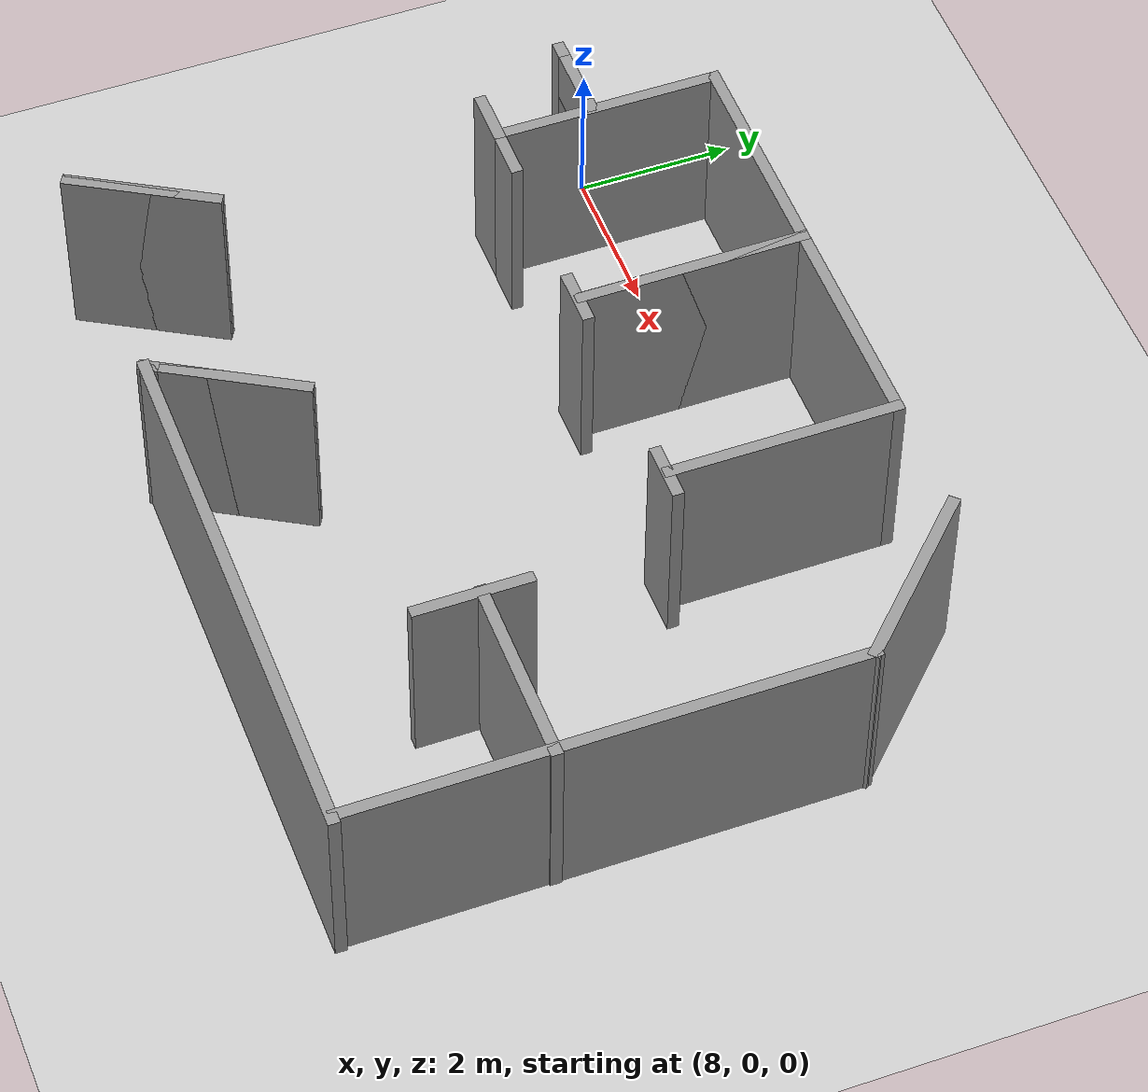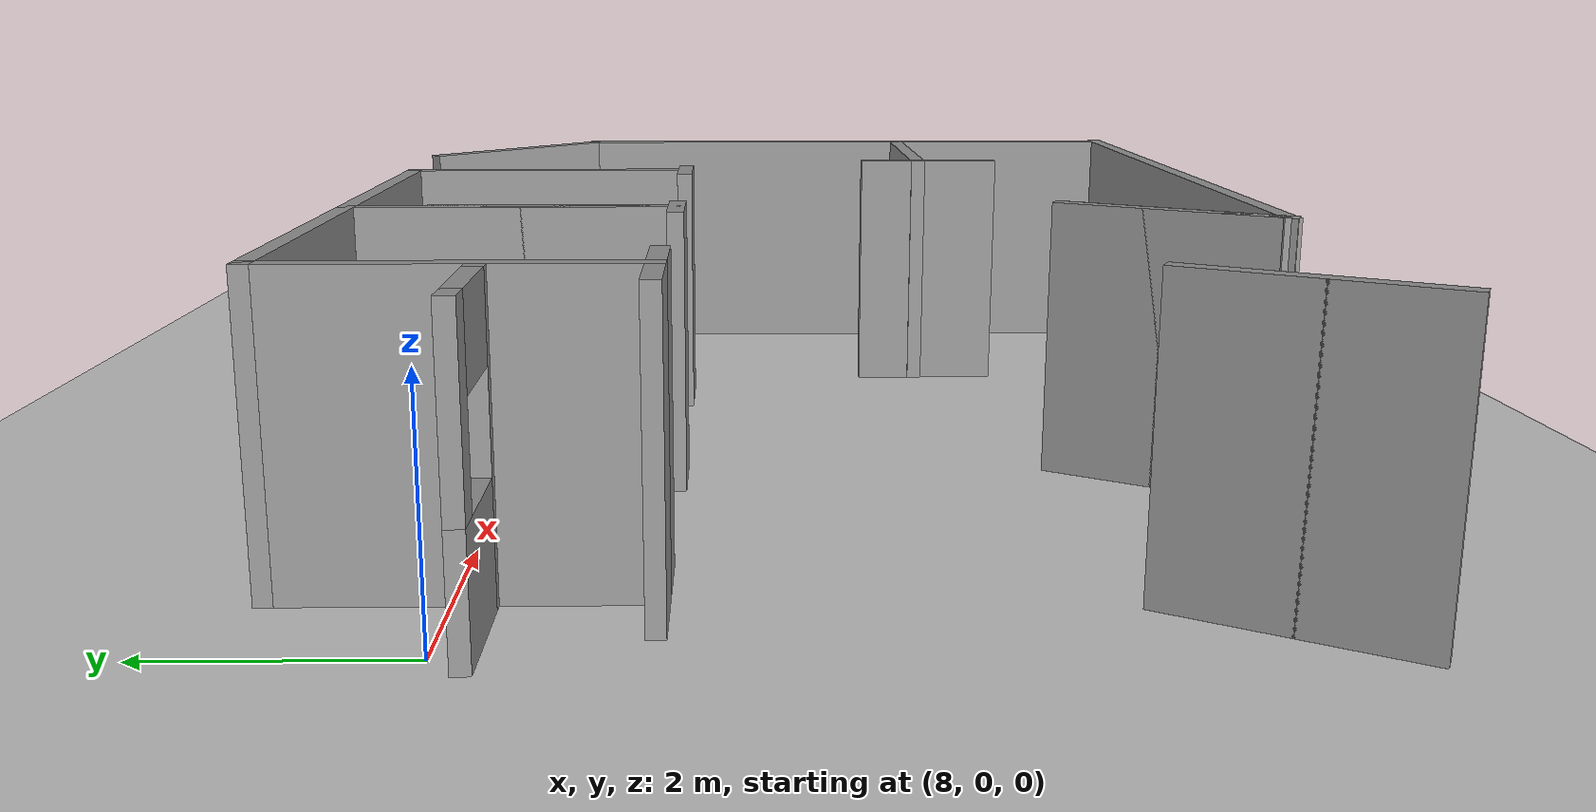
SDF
<sdf version="1.7">
 <world name="default">
  <model name="ground_plane">
   <static>1</static>
   <link name="link">
    <collision name="collision">
     <geometry><plane><normal>0 0 1</normal><size>100 100</size></plane></geometry>
     <surface>
      <contact><collide_bitmask>65535</collide_bitmask></contact>
      <friction><ode><mu>100</mu><mu2>50</mu2></ode></friction>
     </surface>
    </collision>
    <visual name="visual">
     <cast_shadows>0</cast_shadows>
     <geometry><plane><normal>0 0 1</normal><size>100 100</size></plane></geometry>
     <material>
      <script><uri>file://media/materials/scripts/gazebo.material</uri><name>Gazebo/Grey</name></script>
     </material>
    </visual>
   </link>
  </model>
  <model name="test_office_top">
   <link name="Wall_172">
    <pose>4.31898 -3.21326 0 0 -0 1.0472</pose>
    <visual name="Wall_172_Visual">
     <pose>0 0 1.25 0 -0 0</pose>
     <geometry><box><size>2 0.15 2.5</size></box></geometry>
     <material>
      <script><uri>file://media/materials/scripts/gazebo.material</uri><name>Gazebo/Grey</name></script>
      <ambient>1 1 1 1</ambient>
      <shader type="pixel"/>
     </material>
     <meta><layer>0</layer></meta>
    </visual>
    <collision name="Wall_172_Collision">
     <pose>0 0 1.25 0 -0 0</pose>
     <geometry><box><size>2 0.15 2.5</size></box></geometry>
     <surface>
      <friction>
       <ode><mu>1</mu><mu2>1</mu2><fdir1>0 0 0</fdir1><slip1>0</slip1><slip2>0</slip2></ode>
       <torsional>
        <coefficient>1</coefficient>
        <patch_radius>0</patch_radius>
        <surface_radius>0</surface_radius>
        <use_patch_radius>1</use_patch_radius>
        <ode><slip>0</slip></ode>
       </torsional>
      </friction>
      <bounce><restitution_coefficient>0</restitution_coefficient><threshold>1e+06</threshold></bounce>
      <contact>
       <collide_without_contact>0</collide_without_contact>
       <collide_without_contact_bitmask>1</collide_without_contact_bitmask>
       <collide_bitmask>1</collide_bitmask>
       <ode>
        <soft_cfm>0</soft_cfm>
        <soft_erp>0.2</soft_erp>
        <kp>1e+13</kp>
        <kd>1</kd>
        <max_vel>0.01</max_vel>
        <min_depth>0</min_depth>
       </ode>
       <bullet>
        <split_impulse>1</split_impulse>
        <split_impulse_penetration_threshold>-0.01</split_impulse_penetration_threshold>
        <soft_cfm>0</soft_cfm>
        <soft_erp>0.2</soft_erp>
        <kp>1e+13</kp>
        <kd>1</kd>
       </bullet>
      </contact>
     </surface>
    </collision>
   </link>
   <link name="Wall_173">
    <pose>4.31898 -3.21326 0 0 0 -2.0944</pose>
    <visual name="Wall_173_Visual">
     <pose>0 0 1.25 0 -0 0</pose>
     <geometry><box><size>2 0.15 2.5</size></box></geometry>
     <material>
      <script><uri>file://media/materials/scripts/gazebo.material</uri><name>Gazebo/Grey</name></script>
      <ambient>1 1 1 1</ambient>
      <shader type="pixel"/>
     </material>
     <meta><layer>0</layer></meta>
    </visual>
    <collision name="Wall_173_Collision">
     <pose>0 0 1.25 0 -0 0</pose>
     <geometry><box><size>2 0.15 2.5</size></box></geometry>
     <surface>
      <friction>
       <ode><mu>1</mu><mu2>1</mu2><fdir1>0 0 0</fdir1><slip1>0</slip1><slip2>0</slip2></ode>
       <torsional>
        <coefficient>1</coefficient>
        <patch_radius>0</patch_radius>
        <surface_radius>0</surface_radius>
        <use_patch_radius>1</use_patch_radius>
        <ode><slip>0</slip></ode>
       </torsional>
      </friction>
      <bounce><restitution_coefficient>0</restitution_coefficient><threshold>1e+06</threshold></bounce>
      <contact>
       <collide_without_contact>0</collide_without_contact>
       <collide_without_contact_bitmask>1</collide_without_contact_bitmask>
       <collide_bitmask>1</collide_bitmask>
       <ode>
        <soft_cfm>0</soft_cfm>
        <soft_erp>0.2</soft_erp>
        <kp>1e+13</kp>
        <kd>1</kd>
        <max_vel>0.01</max_vel>
        <min_depth>0</min_depth>
       </ode>
       <bullet>
        <split_impulse>1</split_impulse>
        <split_impulse_penetration_threshold>-0.01</split_impulse_penetration_threshold>
        <soft_cfm>0</soft_cfm>
        <soft_erp>0.2</soft_erp>
        <kp>1e+13</kp>
        <kd>1</kd>
       </bullet>
      </contact>
     </surface>
    </collision>
   </link>
   <link name="Wall_196">
    <pose>7.53536 -3.13578 0 0 -0 1.0472</pose>
    <visual name="Wall_196_Visual">
     <pose>0 0 1.25 0 -0 0</pose>
     <geometry><box><size>2 0.15 2.5</size></box></geometry>
     <material>
      <script><uri>file://media/materials/scripts/gazebo.material</uri><name>Gazebo/Grey</name></script>
      <ambient>1 1 1 1</ambient>
      <shader type="pixel"/>
     </material>
     <meta><layer>0</layer></meta>
    </visual>
    <collision name="Wall_196_Collision">
     <pose>0 0 1.25 0 -0 0</pose>
     <geometry><box><size>2 0.15 2.5</size></box></geometry>
     <surface>
      <friction>
       <ode><mu>1</mu><mu2>1</mu2><fdir1>0 0 0</fdir1><slip1>0</slip1><slip2>0</slip2></ode>
       <torsional>
        <coefficient>1</coefficient>
        <patch_radius>0</patch_radius>
        <surface_radius>0</surface_radius>
        <use_patch_radius>1</use_patch_radius>
        <ode><slip>0</slip></ode>
       </torsional>
      </friction>
      <bounce><restitution_coefficient>0</restitution_coefficient><threshold>1e+06</threshold></bounce>
      <contact>
       <collide_without_contact>0</collide_without_contact>
       <collide_without_contact_bitmask>1</collide_without_contact_bitmask>
       <collide_bitmask>1</collide_bitmask>
       <ode>
        <soft_cfm>0</soft_cfm>
        <soft_erp>0.2</soft_erp>
        <kp>1e+13</kp>
        <kd>1</kd>
        <max_vel>0.01</max_vel>
        <min_depth>0</min_depth>
       </ode>
       <bullet>
        <split_impulse>1</split_impulse>
        <split_impulse_penetration_threshold>-0.01</split_impulse_penetration_threshold>
        <soft_cfm>0</soft_cfm>
        <soft_erp>0.2</soft_erp>
        <kp>1e+13</kp>
        <kd>1</kd>
       </bullet>
      </contact>
     </surface>
    </collision>
   </link>
   <link name="Wall_197">
    <pose>7.53536 -3.13578 0 0 0 -2.0944</pose>
    <visual name="Wall_197_Visual">
     <pose>0 0 1.25 0 -0 0</pose>
     <geometry><box><size>2 0.15 2.5</size></box></geometry>
     <material>
      <script><uri>file://media/materials/scripts/gazebo.material</uri><name>Gazebo/Grey</name></script>
      <ambient>1 1 1 1</ambient>
      <shader type="pixel"/>
     </material>
     <meta><layer>0</layer></meta>
    </visual>
    <collision name="Wall_197_Collision">
     <pose>0 0 1.25 0 -0 0</pose>
     <geometry><box><size>2 0.15 2.5</size></box></geometry>
     <surface>
      <friction>
       <ode><mu>1</mu><mu2>1</mu2><fdir1>0 0 0</fdir1><slip1>0</slip1><slip2>0</slip2></ode>
       <torsional>
        <coefficient>1</coefficient>
        <patch_radius>0</patch_radius>
        <surface_radius>0</surface_radius>
        <use_patch_radius>1</use_patch_radius>
        <ode><slip>0</slip></ode>
       </torsional>
      </friction>
      <bounce><restitution_coefficient>0</restitution_coefficient><threshold>1e+06</threshold></bounce>
      <contact>
       <collide_without_contact>0</collide_without_contact>
       <collide_without_contact_bitmask>1</collide_without_contact_bitmask>
       <collide_bitmask>1</collide_bitmask>
       <ode>
        <soft_cfm>0</soft_cfm>
        <soft_erp>0.2</soft_erp>
        <kp>1e+13</kp>
        <kd>1</kd>
        <max_vel>0.01</max_vel>
        <min_depth>0</min_depth>
       </ode>
       <bullet>
        <split_impulse>1</split_impulse>
        <split_impulse_penetration_threshold>-0.01</split_impulse_penetration_threshold>
        <soft_cfm>0</soft_cfm>
        <soft_erp>0.2</soft_erp>
        <kp>1e+13</kp>
        <kd>1</kd>
       </bullet>
      </contact>
     </surface>
    </collision>
   </link>
   <link name="Wall_198">
    <pose>7.04786 -3.98016 0 0 0 -2.0944</pose>
    <visual name="Wall_198_Visual">
     <pose>0 0 1.25 0 -0 0</pose>
     <geometry><box><size>0.25 0.15 2.5</size></box></geometry>
     <material>
      <script><uri>file://media/materials/scripts/gazebo.material</uri><name>Gazebo/Grey</name></script>
      <ambient>1 1 1 1</ambient>
      <shader type="pixel"/>
     </material>
     <meta><layer>0</layer></meta>
    </visual>
    <collision name="Wall_198_Collision">
     <pose>0 0 1.25 0 -0 0</pose>
     <geometry><box><size>0.25 0.15 2.5</size></box></geometry>
     <surface>
      <friction>
       <ode><mu>1</mu><mu2>1</mu2><fdir1>0 0 0</fdir1><slip1>0</slip1><slip2>0</slip2></ode>
       <torsional>
        <coefficient>1</coefficient>
        <patch_radius>0</patch_radius>
        <surface_radius>0</surface_radius>
        <use_patch_radius>1</use_patch_radius>
        <ode><slip>0</slip></ode>
       </torsional>
      </friction>
      <bounce><restitution_coefficient>0</restitution_coefficient><threshold>1e+06</threshold></bounce>
      <contact>
       <collide_without_contact>0</collide_without_contact>
       <collide_without_contact_bitmask>1</collide_without_contact_bitmask>
       <collide_bitmask>1</collide_bitmask>
       <ode>
        <soft_cfm>0</soft_cfm>
        <soft_erp>0.2</soft_erp>
        <kp>1e+13</kp>
        <kd>1</kd>
        <max_vel>0.01</max_vel>
        <min_depth>0</min_depth>
       </ode>
       <bullet>
        <split_impulse>1</split_impulse>
        <split_impulse_penetration_threshold>-0.01</split_impulse_penetration_threshold>
        <soft_cfm>0</soft_cfm>
        <soft_erp>0.2</soft_erp>
        <kp>1e+13</kp>
        <kd>1</kd>
       </bullet>
      </contact>
     </surface>
    </collision>
   </link>
   <link name="Wall_199">
    <pose>10.4632 -4.03111 0 0 0 -0.002223</pose>
    <visual name="Wall_199_Visual">
     <pose>0 0 1.25 0 -0 0</pose>
     <geometry><box><size>7.03061 0.15 2.5</size></box></geometry>
     <material>
      <script><uri>file://media/materials/scripts/gazebo.material</uri><name>Gazebo/Grey</name></script>
      <ambient>1 1 1 1</ambient>
      <shader type="pixel"/>
     </material>
     <meta><layer>0</layer></meta>
    </visual>
    <collision name="Wall_199_Collision">
     <pose>0 0 1.25 0 -0 0</pose>
     <geometry><box><size>7.03061 0.15 2.5</size></box></geometry>
     <surface>
      <friction>
       <ode><mu>1</mu><mu2>1</mu2><fdir1>0 0 0</fdir1><slip1>0</slip1><slip2>0</slip2></ode>
       <torsional>
        <coefficient>1</coefficient>
        <patch_radius>0</patch_radius>
        <surface_radius>0</surface_radius>
        <use_patch_radius>1</use_patch_radius>
        <ode><slip>0</slip></ode>
       </torsional>
      </friction>
      <bounce><restitution_coefficient>0</restitution_coefficient><threshold>1e+06</threshold></bounce>
      <contact>
       <collide_without_contact>0</collide_without_contact>
       <collide_without_contact_bitmask>1</collide_without_contact_bitmask>
       <collide_bitmask>1</collide_bitmask>
       <ode>
        <soft_cfm>0</soft_cfm>
        <soft_erp>0.2</soft_erp>
        <kp>1e+13</kp>
        <kd>1</kd>
        <max_vel>0.01</max_vel>
        <min_depth>0</min_depth>
       </ode>
       <bullet>
        <split_impulse>1</split_impulse>
        <split_impulse_penetration_threshold>-0.01</split_impulse_penetration_threshold>
        <soft_cfm>0</soft_cfm>
        <soft_erp>0.2</soft_erp>
        <kp>1e+13</kp>
        <kd>1</kd>
       </bullet>
      </contact>
     </surface>
    </collision>
   </link>
   <link name="Wall_331">
    <pose>6.37934 4.00166 0 0 -0 0</pose>
    <visual name="Wall_331_Visual">
     <pose>0 0 1.25 0 -0 0</pose>
     <geometry><box><size>3 0.15 2.5</size></box></geometry>
     <material>
      <script><uri>file://media/materials/scripts/gazebo.material</uri><name>Gazebo/Grey</name></script>
      <ambient>1 1 1 1</ambient>
      <shader type="pixel"/>
     </material>
     <meta><layer>0</layer></meta>
    </visual>
    <collision name="Wall_331_Collision">
     <pose>0 0 1.25 0 -0 0</pose>
     <geometry><box><size>3 0.15 2.5</size></box></geometry>
     <surface>
      <friction>
       <ode><mu>1</mu><mu2>1</mu2><fdir1>0 0 0</fdir1><slip1>0</slip1><slip2>0</slip2></ode>
       <torsional>
        <coefficient>1</coefficient>
        <patch_radius>0</patch_radius>
        <surface_radius>0</surface_radius>
        <use_patch_radius>1</use_patch_radius>
        <ode><slip>0</slip></ode>
       </torsional>
      </friction>
      <bounce><restitution_coefficient>0</restitution_coefficient><threshold>1e+06</threshold></bounce>
      <contact>
       <collide_without_contact>0</collide_without_contact>
       <collide_without_contact_bitmask>1</collide_without_contact_bitmask>
       <collide_bitmask>1</collide_bitmask>
       <ode>
        <soft_cfm>0</soft_cfm>
        <soft_erp>0.2</soft_erp>
        <kp>1e+13</kp>
        <kd>1</kd>
        <max_vel>0.01</max_vel>
        <min_depth>0</min_depth>
       </ode>
       <bullet>
        <split_impulse>1</split_impulse>
        <split_impulse_penetration_threshold>-0.01</split_impulse_penetration_threshold>
        <soft_cfm>0</soft_cfm>
        <soft_erp>0.2</soft_erp>
        <kp>1e+13</kp>
        <kd>1</kd>
       </bullet>
      </contact>
     </surface>
    </collision>
   </link>
   <link name="Wall_332">
    <pose>7.80434 2.57666 0 0 0 -1.5708</pose>
    <visual name="Wall_332_Visual">
     <pose>0 0 1.25 0 -0 0</pose>
     <geometry><box><size>3 0.15 2.5</size></box></geometry>
     <material>
      <script><uri>file://media/materials/scripts/gazebo.material</uri><name>Gazebo/Grey</name></script>
      <ambient>1 1 1 1</ambient>
      <shader type="pixel"/>
     </material>
     <meta><layer>0</layer></meta>
    </visual>
    <collision name="Wall_332_Collision">
     <pose>0 0 1.25 0 -0 0</pose>
     <geometry><box><size>3 0.15 2.5</size></box></geometry>
     <surface>
      <friction>
       <ode><mu>1</mu><mu2>1</mu2><fdir1>0 0 0</fdir1><slip1>0</slip1><slip2>0</slip2></ode>
       <torsional>
        <coefficient>1</coefficient>
        <patch_radius>0</patch_radius>
        <surface_radius>0</surface_radius>
        <use_patch_radius>1</use_patch_radius>
        <ode><slip>0</slip></ode>
       </torsional>
      </friction>
      <bounce><restitution_coefficient>0</restitution_coefficient><threshold>1e+06</threshold></bounce>
      <contact>
       <collide_without_contact>0</collide_without_contact>
       <collide_without_contact_bitmask>1</collide_without_contact_bitmask>
       <collide_bitmask>1</collide_bitmask>
       <ode>
        <soft_cfm>0</soft_cfm>
        <soft_erp>0.2</soft_erp>
        <kp>1e+13</kp>
        <kd>1</kd>
        <max_vel>0.01</max_vel>
        <min_depth>0</min_depth>
       </ode>
       <bullet>
        <split_impulse>1</split_impulse>
        <split_impulse_penetration_threshold>-0.01</split_impulse_penetration_threshold>
        <soft_cfm>0</soft_cfm>
        <soft_erp>0.2</soft_erp>
        <kp>1e+13</kp>
        <kd>1</kd>
       </bullet>
      </contact>
     </surface>
    </collision>
   </link>
   <link name="Wall_333">
    <pose>7.80434 2.57666 0 0 -0 1.5708</pose>
    <visual name="Wall_333_Visual">
     <pose>0 0 1.25 0 -0 0</pose>
     <geometry><box><size>3 0.15 2.5</size></box></geometry>
     <material>
      <script><uri>file://media/materials/scripts/gazebo.material</uri><name>Gazebo/Grey</name></script>
      <ambient>1 1 1 1</ambient>
      <shader type="pixel"/>
     </material>
     <meta><layer>0</layer></meta>
    </visual>
    <collision name="Wall_333_Collision">
     <pose>0 0 1.25 0 -0 0</pose>
     <geometry><box><size>3 0.15 2.5</size></box></geometry>
     <surface>
      <friction>
       <ode><mu>1</mu><mu2>1</mu2><fdir1>0 0 0</fdir1><slip1>0</slip1><slip2>0</slip2></ode>
       <torsional>
        <coefficient>1</coefficient>
        <patch_radius>0</patch_radius>
        <surface_radius>0</surface_radius>
        <use_patch_radius>1</use_patch_radius>
        <ode><slip>0</slip></ode>
       </torsional>
      </friction>
      <bounce><restitution_coefficient>0</restitution_coefficient><threshold>1e+06</threshold></bounce>
      <contact>
       <collide_without_contact>0</collide_without_contact>
       <collide_without_contact_bitmask>1</collide_without_contact_bitmask>
       <collide_bitmask>1</collide_bitmask>
       <ode>
        <soft_cfm>0</soft_cfm>
        <soft_erp>0.2</soft_erp>
        <kp>1e+13</kp>
        <kd>1</kd>
        <max_vel>0.01</max_vel>
        <min_depth>0</min_depth>
       </ode>
       <bullet>
        <split_impulse>1</split_impulse>
        <split_impulse_penetration_threshold>-0.01</split_impulse_penetration_threshold>
        <soft_cfm>0</soft_cfm>
        <soft_erp>0.2</soft_erp>
        <kp>1e+13</kp>
        <kd>1</kd>
       </bullet>
      </contact>
     </surface>
    </collision>
   </link>
   <link name="Wall_334">
    <pose>9.22934 4.00166 0 0 -0 0</pose>
    <visual name="Wall_334_Visual">
     <pose>0 0 1.25 0 -0 0</pose>
     <geometry><box><size>3 0.15 2.5</size></box></geometry>
     <material>
      <script><uri>file://media/materials/scripts/gazebo.material</uri><name>Gazebo/Grey</name></script>
      <ambient>1 1 1 1</ambient>
      <shader type="pixel"/>
     </material>
     <meta><layer>0</layer></meta>
    </visual>
    <collision name="Wall_334_Collision">
     <pose>0 0 1.25 0 -0 0</pose>
     <geometry><box><size>3 0.15 2.5</size></box></geometry>
     <surface>
      <friction>
       <ode><mu>1</mu><mu2>1</mu2><fdir1>0 0 0</fdir1><slip1>0</slip1><slip2>0</slip2></ode>
       <torsional>
        <coefficient>1</coefficient>
        <patch_radius>0</patch_radius>
        <surface_radius>0</surface_radius>
        <use_patch_radius>1</use_patch_radius>
        <ode><slip>0</slip></ode>
       </torsional>
      </friction>
      <bounce><restitution_coefficient>0</restitution_coefficient><threshold>1e+06</threshold></bounce>
      <contact>
       <collide_without_contact>0</collide_without_contact>
       <collide_without_contact_bitmask>1</collide_without_contact_bitmask>
       <collide_bitmask>1</collide_bitmask>
       <ode>
        <soft_cfm>0</soft_cfm>
        <soft_erp>0.2</soft_erp>
        <kp>1e+13</kp>
        <kd>1</kd>
        <max_vel>0.01</max_vel>
        <min_depth>0</min_depth>
       </ode>
       <bullet>
        <split_impulse>1</split_impulse>
        <split_impulse_penetration_threshold>-0.01</split_impulse_penetration_threshold>
        <soft_cfm>0</soft_cfm>
        <soft_erp>0.2</soft_erp>
        <kp>1e+13</kp>
        <kd>1</kd>
       </bullet>
      </contact>
     </surface>
    </collision>
   </link>
   <link name="Wall_335">
    <pose>10.6543 2.57666 0 0 0 -1.5708</pose>
    <visual name="Wall_335_Visual">
     <pose>0 0 1.25 0 -0 0</pose>
     <geometry><box><size>3 0.15 2.5</size></box></geometry>
     <material>
      <script><uri>file://media/materials/scripts/gazebo.material</uri><name>Gazebo/Grey</name></script>
      <ambient>1 1 1 1</ambient>
      <shader type="pixel"/>
     </material>
     <meta><layer>0</layer></meta>
    </visual>
    <collision name="Wall_335_Collision">
     <pose>0 0 1.25 0 -0 0</pose>
     <geometry><box><size>3 0.15 2.5</size></box></geometry>
     <surface>
      <friction>
       <ode><mu>1</mu><mu2>1</mu2><fdir1>0 0 0</fdir1><slip1>0</slip1><slip2>0</slip2></ode>
       <torsional>
        <coefficient>1</coefficient>
        <patch_radius>0</patch_radius>
        <surface_radius>0</surface_radius>
        <use_patch_radius>1</use_patch_radius>
        <ode><slip>0</slip></ode>
       </torsional>
      </friction>
      <bounce><restitution_coefficient>0</restitution_coefficient><threshold>1e+06</threshold></bounce>
      <contact>
       <collide_without_contact>0</collide_without_contact>
       <collide_without_contact_bitmask>1</collide_without_contact_bitmask>
       <collide_bitmask>1</collide_bitmask>
       <ode>
        <soft_cfm>0</soft_cfm>
        <soft_erp>0.2</soft_erp>
        <kp>1e+13</kp>
        <kd>1</kd>
        <max_vel>0.01</max_vel>
        <min_depth>0</min_depth>
       </ode>
       <bullet>
        <split_impulse>1</split_impulse>
        <split_impulse_penetration_threshold>-0.01</split_impulse_penetration_threshold>
        <soft_cfm>0</soft_cfm>
        <soft_erp>0.2</soft_erp>
        <kp>1e+13</kp>
        <kd>1</kd>
       </bullet>
      </contact>
     </surface>
    </collision>
   </link>
   <link name="Wall_337">
    <pose>7.77966 1.11419 0 0 -0 0</pose>
    <visual name="Wall_337_Visual">
     <pose>0 0 1.25 0 -0 0</pose>
     <geometry><box><size>0.75 0.15 2.5</size></box></geometry>
     <material>
      <script><uri>file://media/materials/scripts/gazebo.material</uri><name>Gazebo/Grey</name></script>
      <ambient>1 1 1 1</ambient>
      <shader type="pixel"/>
     </material>
     <meta><layer>0</layer></meta>
    </visual>
    <collision name="Wall_337_Collision">
     <pose>0 0 1.25 0 -0 0</pose>
     <geometry><box><size>0.75 0.15 2.5</size></box></geometry>
     <surface>
      <friction>
       <ode><mu>1</mu><mu2>1</mu2><fdir1>0 0 0</fdir1><slip1>0</slip1><slip2>0</slip2></ode>
       <torsional>
        <coefficient>1</coefficient>
        <patch_radius>0</patch_radius>
        <surface_radius>0</surface_radius>
        <use_patch_radius>1</use_patch_radius>
        <ode><slip>0</slip></ode>
       </torsional>
      </friction>
      <bounce><restitution_coefficient>0</restitution_coefficient><threshold>1e+06</threshold></bounce>
      <contact>
       <collide_without_contact>0</collide_without_contact>
       <collide_without_contact_bitmask>1</collide_without_contact_bitmask>
       <collide_bitmask>1</collide_bitmask>
       <ode>
        <soft_cfm>0</soft_cfm>
        <soft_erp>0.2</soft_erp>
        <kp>1e+13</kp>
        <kd>1</kd>
        <max_vel>0.01</max_vel>
        <min_depth>0</min_depth>
       </ode>
       <bullet>
        <split_impulse>1</split_impulse>
        <split_impulse_penetration_threshold>-0.01</split_impulse_penetration_threshold>
        <soft_cfm>0</soft_cfm>
        <soft_erp>0.2</soft_erp>
        <kp>1e+13</kp>
        <kd>1</kd>
       </bullet>
      </contact>
     </surface>
    </collision>
   </link>
   <link name="Wall_343">
    <pose>10.6379 1.12605 0 0 -0 0</pose>
    <visual name="Wall_343_Visual">
     <pose>0 0 1.25 0 -0 0</pose>
     <geometry><box><size>0.75 0.15 2.5</size></box></geometry>
     <material>
      <script><uri>file://media/materials/scripts/gazebo.material</uri><name>Gazebo/Grey</name></script>
      <ambient>1 1 1 1</ambient>
      <shader type="pixel"/>
     </material>
     <meta><layer>0</layer></meta>
    </visual>
    <collision name="Wall_343_Collision">
     <pose>0 0 1.25 0 -0 0</pose>
     <geometry><box><size>0.75 0.15 2.5</size></box></geometry>
     <surface>
      <friction>
       <ode><mu>1</mu><mu2>1</mu2><fdir1>0 0 0</fdir1><slip1>0</slip1><slip2>0</slip2></ode>
       <torsional>
        <coefficient>1</coefficient>
        <patch_radius>0</patch_radius>
        <surface_radius>0</surface_radius>
        <use_patch_radius>1</use_patch_radius>
        <ode><slip>0</slip></ode>
       </torsional>
      </friction>
      <bounce><restitution_coefficient>0</restitution_coefficient><threshold>1e+06</threshold></bounce>
      <contact>
       <collide_without_contact>0</collide_without_contact>
       <collide_without_contact_bitmask>1</collide_without_contact_bitmask>
       <collide_bitmask>1</collide_bitmask>
       <ode>
        <soft_cfm>0</soft_cfm>
        <soft_erp>0.2</soft_erp>
        <kp>1e+13</kp>
        <kd>1</kd>
        <max_vel>0.01</max_vel>
        <min_depth>0</min_depth>
       </ode>
       <bullet>
        <split_impulse>1</split_impulse>
        <split_impulse_penetration_threshold>-0.01</split_impulse_penetration_threshold>
        <soft_cfm>0</soft_cfm>
        <soft_erp>0.2</soft_erp>
        <kp>1e+13</kp>
        <kd>1</kd>
       </bullet>
      </contact>
     </surface>
    </collision>
   </link>
   <link name="Wall_358">
    <pose>12.709 -1.45939 0 0 -0 3.14159</pose>
    <visual name="Wall_358_Visual">
     <pose>0 0 1.25 0 -0 0</pose>
     <geometry><box><size>2.5 0.15 2.5</size></box></geometry>
     <material>
      <script><uri>file://media/materials/scripts/gazebo.material</uri><name>Gazebo/Grey</name></script>
      <ambient>1 1 1 1</ambient>
      <shader type="pixel"/>
     </material>
     <meta><layer>0</layer></meta>
    </visual>
    <collision name="Wall_358_Collision">
     <pose>0 0 1.25 0 -0 0</pose>
     <geometry><box><size>2.5 0.15 2.5</size></box></geometry>
     <surface>
      <friction>
       <ode><mu>1</mu><mu2>1</mu2><fdir1>0 0 0</fdir1><slip1>0</slip1><slip2>0</slip2></ode>
       <torsional>
        <coefficient>1</coefficient>
        <patch_radius>0</patch_radius>
        <surface_radius>0</surface_radius>
        <use_patch_radius>1</use_patch_radius>
        <ode><slip>0</slip></ode>
       </torsional>
      </friction>
      <bounce><restitution_coefficient>0</restitution_coefficient><threshold>1e+06</threshold></bounce>
      <contact>
       <collide_without_contact>0</collide_without_contact>
       <collide_without_contact_bitmask>1</collide_without_contact_bitmask>
       <collide_bitmask>1</collide_bitmask>
       <ode>
        <soft_cfm>0</soft_cfm>
        <soft_erp>0.2</soft_erp>
        <kp>1e+13</kp>
        <kd>1</kd>
        <max_vel>0.01</max_vel>
        <min_depth>0</min_depth>
       </ode>
       <bullet>
        <split_impulse>1</split_impulse>
        <split_impulse_penetration_threshold>-0.01</split_impulse_penetration_threshold>
        <soft_cfm>0</soft_cfm>
        <soft_erp>0.2</soft_erp>
        <kp>1e+13</kp>
        <kd>1</kd>
       </bullet>
      </contact>
     </surface>
    </collision>
   </link>
   <link name="Wall_360">
    <pose>11.5476 -1.57698 0 0 0 -1.5708</pose>
    <visual name="Wall_360_Visual">
     <pose>0 0 1.25 0 -0 0</pose>
     <geometry><box><size>1.5 0.15 2.5</size></box></geometry>
     <material>
      <script><uri>file://media/materials/scripts/gazebo.material</uri><name>Gazebo/Grey</name></script>
      <ambient>1 1 1 1</ambient>
      <shader type="pixel"/>
     </material>
     <meta><layer>0</layer></meta>
    </visual>
    <collision name="Wall_360_Collision">
     <pose>0 0 1.25 0 -0 0</pose>
     <geometry><box><size>1.5 0.15 2.5</size></box></geometry>
     <surface>
      <friction>
       <ode><mu>1</mu><mu2>1</mu2><fdir1>0 0 0</fdir1><slip1>0</slip1><slip2>0</slip2></ode>
       <torsional>
        <coefficient>1</coefficient>
        <patch_radius>0</patch_radius>
        <surface_radius>0</surface_radius>
        <use_patch_radius>1</use_patch_radius>
        <ode><slip>0</slip></ode>
       </torsional>
      </friction>
      <bounce><restitution_coefficient>0</restitution_coefficient><threshold>1e+06</threshold></bounce>
      <contact>
       <collide_without_contact>0</collide_without_contact>
       <collide_without_contact_bitmask>1</collide_without_contact_bitmask>
       <collide_bitmask>1</collide_bitmask>
       <ode>
        <soft_cfm>0</soft_cfm>
        <soft_erp>0.2</soft_erp>
        <kp>1e+13</kp>
        <kd>1</kd>
        <max_vel>0.01</max_vel>
        <min_depth>0</min_depth>
       </ode>
       <bullet>
        <split_impulse>1</split_impulse>
        <split_impulse_penetration_threshold>-0.01</split_impulse_penetration_threshold>
        <soft_cfm>0</soft_cfm>
        <soft_erp>0.2</soft_erp>
        <kp>1e+13</kp>
        <kd>1</kd>
       </bullet>
      </contact>
     </surface>
    </collision>
   </link>
   <link name="Wall_362">
    <pose>13.0307 3.18899 0 0 0 -0.785398</pose>
    <visual name="Wall_362_Visual">
     <pose>0 0 1.25 0 -0 0</pose>
     <geometry><box><size>2.5 0.15 2.5</size></box></geometry>
     <material>
      <script><uri>file://media/materials/scripts/gazebo.material</uri><name>Gazebo/Grey</name></script>
      <ambient>1 1 1 1</ambient>
      <shader type="pixel"/>
     </material>
     <meta><layer>0</layer></meta>
    </visual>
    <collision name="Wall_362_Collision">
     <pose>0 0 1.25 0 -0 0</pose>
     <geometry><box><size>2.5 0.15 2.5</size></box></geometry>
     <surface>
      <friction>
       <ode><mu>1</mu><mu2>1</mu2><fdir1>0 0 0</fdir1><slip1>0</slip1><slip2>0</slip2></ode>
       <torsional>
        <coefficient>1</coefficient>
        <patch_radius>0</patch_radius>
        <surface_radius>0</surface_radius>
        <use_patch_radius>1</use_patch_radius>
        <ode><slip>0</slip></ode>
       </torsional>
      </friction>
      <bounce><restitution_coefficient>0</restitution_coefficient><threshold>1e+06</threshold></bounce>
      <contact>
       <collide_without_contact>0</collide_without_contact>
       <collide_without_contact_bitmask>1</collide_without_contact_bitmask>
       <collide_bitmask>1</collide_bitmask>
       <ode>
        <soft_cfm>0</soft_cfm>
        <soft_erp>0.2</soft_erp>
        <kp>1e+13</kp>
        <kd>1</kd>
        <max_vel>0.01</max_vel>
        <min_depth>0</min_depth>
       </ode>
       <bullet>
        <split_impulse>1</split_impulse>
        <split_impulse_penetration_threshold>-0.01</split_impulse_penetration_threshold>
        <soft_cfm>0</soft_cfm>
        <soft_erp>0.2</soft_erp>
        <kp>1e+13</kp>
        <kd>1</kd>
       </bullet>
      </contact>
     </surface>
    </collision>
   </link>
   <link name="Wall_366">
    <pose>13.8616 -0.816857 0 0 0 -1.5708</pose>
    <visual name="Wall_366_Visual">
     <pose>0 0 1.25 0 -0 0</pose>
     <geometry><box><size>6.5 0.15 2.5</size></box></geometry>
     <material>
      <script><uri>file://media/materials/scripts/gazebo.material</uri><name>Gazebo/Grey</name></script>
      <ambient>1 1 1 1</ambient>
      <shader type="pixel"/>
     </material>
     <meta><layer>0</layer></meta>
    </visual>
    <collision name="Wall_366_Collision">
     <pose>0 0 1.25 0 -0 0</pose>
     <geometry><box><size>6.5 0.15 2.5</size></box></geometry>
     <surface>
      <friction>
       <ode><mu>1</mu><mu2>1</mu2><fdir1>0 0 0</fdir1><slip1>0</slip1><slip2>0</slip2></ode>
       <torsional>
        <coefficient>1</coefficient>
        <patch_radius>0</patch_radius>
        <surface_radius>0</surface_radius>
        <use_patch_radius>1</use_patch_radius>
        <ode><slip>0</slip></ode>
       </torsional>
      </friction>
      <bounce><restitution_coefficient>0</restitution_coefficient><threshold>1e+06</threshold></bounce>
      <contact>
       <collide_without_contact>0</collide_without_contact>
       <collide_without_contact_bitmask>1</collide_without_contact_bitmask>
       <collide_bitmask>1</collide_bitmask>
       <ode>
        <soft_cfm>0</soft_cfm>
        <soft_erp>0.2</soft_erp>
        <kp>1e+13</kp>
        <kd>1</kd>
        <max_vel>0.01</max_vel>
        <min_depth>0</min_depth>
       </ode>
       <bullet>
        <split_impulse>1</split_impulse>
        <split_impulse_penetration_threshold>-0.01</split_impulse_penetration_threshold>
        <soft_cfm>0</soft_cfm>
        <soft_erp>0.2</soft_erp>
        <kp>1e+13</kp>
        <kd>1</kd>
       </bullet>
      </contact>
     </surface>
    </collision>
   </link>
   <link name="Wall_369">
    <pose>4.36794 2.38319 0 0 -0 3.14159</pose>
    <visual name="Wall_369_Visual_0">
     <pose>-0.520654 0 1.25 0 -0 0</pose>
     <geometry><box><size>0.208692 0.15 2.5</size></box></geometry>
     <material>
      <script><uri>file://media/materials/scripts/gazebo.material</uri><name>Gazebo/Grey</name></script>
      <ambient>1 1 1 1</ambient>
      <shader type="pixel"/>
     </material>
     <meta><layer>0</layer></meta>
    </visual>
    <visual name="Wall_369_Visual_1">
     <pose>0.104346 0 0.5 0 -0 0</pose>
     <geometry><box><size>1.04131 0.15 1</size></box></geometry>
     <material>
      <script><uri>file://media/materials/scripts/gazebo.material</uri><name>Gazebo/Grey</name></script>
      <ambient>1 1 1 1</ambient>
      <shader type="pixel"/>
     </material>
     <meta><layer>0</layer></meta>
    </visual>
    <visual name="Wall_369_Visual_2">
     <pose>0.504346 0 1.75 0 -0 0</pose>
     <geometry><box><size>0.241308 0.15 1.5</size></box></geometry>
     <material>
      <script><uri>file://media/materials/scripts/gazebo.material</uri><name>Gazebo/Grey</name></script>
      <ambient>1 1 1 1</ambient>
      <shader type="pixel"/>
     </material>
     <meta><layer>0</layer></meta>
    </visual>
    <visual name="Wall_369_Visual_3">
     <pose>-0.016308 0 2.15 0 -0 0</pose>
     <geometry><box><size>0.8 0.15 0.7</size></box></geometry>
     <material>
      <script><uri>file://media/materials/scripts/gazebo.material</uri><name>Gazebo/Grey</name></script>
      <ambient>1 1 1 1</ambient>
      <shader type="pixel"/>
     </material>
     <meta><layer>0</layer></meta>
    </visual>
    <collision name="Wall_369_Collision_0">
     <pose>-0.520654 0 1.25 0 -0 0</pose>
     <geometry><box><size>0.208692 0.15 2.5</size></box></geometry>
     <surface>
      <friction>
       <ode><mu>1</mu><mu2>1</mu2><fdir1>0 0 0</fdir1><slip1>0</slip1><slip2>0</slip2></ode>
       <torsional>
        <coefficient>1</coefficient>
        <patch_radius>0</patch_radius>
        <surface_radius>0</surface_radius>
        <use_patch_radius>1</use_patch_radius>
        <ode><slip>0</slip></ode>
       </torsional>
      </friction>
      <bounce><restitution_coefficient>0</restitution_coefficient><threshold>1e+06</threshold></bounce>
      <contact>
       <collide_without_contact>0</collide_without_contact>
       <collide_without_contact_bitmask>1</collide_without_contact_bitmask>
       <collide_bitmask>1</collide_bitmask>
       <ode>
        <soft_cfm>0</soft_cfm>
        <soft_erp>0.2</soft_erp>
        <kp>1e+13</kp>
        <kd>1</kd>
        <max_vel>0.01</max_vel>
        <min_depth>0</min_depth>
       </ode>
       <bullet>
        <split_impulse>1</split_impulse>
        <split_impulse_penetration_threshold>-0.01</split_impulse_penetration_threshold>
        <soft_cfm>0</soft_cfm>
        <soft_erp>0.2</soft_erp>
        <kp>1e+13</kp>
        <kd>1</kd>
       </bullet>
      </contact>
     </surface>
    </collision>
    <collision name="Wall_369_Collision_1">
     <pose>0.104346 0 0.5 0 -0 0</pose>
     <geometry><box><size>1.04131 0.15 1</size></box></geometry>
     <surface>
      <friction>
       <ode><mu>1</mu><mu2>1</mu2><fdir1>0 0 0</fdir1><slip1>0</slip1><slip2>0</slip2></ode>
       <torsional>
        <coefficient>1</coefficient>
        <patch_radius>0</patch_radius>
        <surface_radius>0</surface_radius>
        <use_patch_radius>1</use_patch_radius>
        <ode><slip>0</slip></ode>
       </torsional>
      </friction>
      <bounce><restitution_coefficient>0</restitution_coefficient><threshold>1e+06</threshold></bounce>
      <contact>
       <collide_without_contact>0</collide_without_contact>
       <collide_without_contact_bitmask>1</collide_without_contact_bitmask>
       <collide_bitmask>1</collide_bitmask>
       <ode>
        <soft_cfm>0</soft_cfm>
        <soft_erp>0.2</soft_erp>
        <kp>1e+13</kp>
        <kd>1</kd>
        <max_vel>0.01</max_vel>
        <min_depth>0</min_depth>
       </ode>
       <bullet>
        <split_impulse>1</split_impulse>
        <split_impulse_penetration_threshold>-0.01</split_impulse_penetration_threshold>
        <soft_cfm>0</soft_cfm>
        <soft_erp>0.2</soft_erp>
        <kp>1e+13</kp>
        <kd>1</kd>
       </bullet>
      </contact>
     </surface>
    </collision>
    <collision name="Wall_369_Collision_2">
     <pose>0.504346 0 1.75 0 -0 0</pose>
     <geometry><box><size>0.241308 0.15 1.5</size></box></geometry>
     <surface>
      <friction>
       <ode><mu>1</mu><mu2>1</mu2><fdir1>0 0 0</fdir1><slip1>0</slip1><slip2>0</slip2></ode>
       <torsional>
        <coefficient>1</coefficient>
        <patch_radius>0</patch_radius>
        <surface_radius>0</surface_radius>
        <use_patch_radius>1</use_patch_radius>
        <ode><slip>0</slip></ode>
       </torsional>
      </friction>
      <bounce><restitution_coefficient>0</restitution_coefficient><threshold>1e+06</threshold></bounce>
      <contact>
       <collide_without_contact>0</collide_without_contact>
       <collide_without_contact_bitmask>1</collide_without_contact_bitmask>
       <collide_bitmask>1</collide_bitmask>
       <ode>
        <soft_cfm>0</soft_cfm>
        <soft_erp>0.2</soft_erp>
        <kp>1e+13</kp>
        <kd>1</kd>
        <max_vel>0.01</max_vel>
        <min_depth>0</min_depth>
       </ode>
       <bullet>
        <split_impulse>1</split_impulse>
        <split_impulse_penetration_threshold>-0.01</split_impulse_penetration_threshold>
        <soft_cfm>0</soft_cfm>
        <soft_erp>0.2</soft_erp>
        <kp>1e+13</kp>
        <kd>1</kd>
       </bullet>
      </contact>
     </surface>
    </collision>
    <collision name="Wall_369_Collision_3">
     <pose>-0.016308 0 2.15 0 -0 0</pose>
     <geometry><box><size>0.8 0.15 0.7</size></box></geometry>
     <surface>
      <friction>
       <ode><mu>1</mu><mu2>1</mu2><fdir1>0 0 0</fdir1><slip1>0</slip1><slip2>0</slip2></ode>
       <torsional>
        <coefficient>1</coefficient>
        <patch_radius>0</patch_radius>
        <surface_radius>0</surface_radius>
        <use_patch_radius>1</use_patch_radius>
        <ode><slip>0</slip></ode>
       </torsional>
      </friction>
      <bounce><restitution_coefficient>0</restitution_coefficient><threshold>1e+06</threshold></bounce>
      <contact>
       <collide_without_contact>0</collide_without_contact>
       <collide_without_contact_bitmask>1</collide_without_contact_bitmask>
       <collide_bitmask>1</collide_bitmask>
       <ode>
        <soft_cfm>0</soft_cfm>
        <soft_erp>0.2</soft_erp>
        <kp>1e+13</kp>
        <kd>1</kd>
        <max_vel>0.01</max_vel>
        <min_depth>0</min_depth>
       </ode>
       <bullet>
        <split_impulse>1</split_impulse>
        <split_impulse_penetration_threshold>-0.01</split_impulse_penetration_threshold>
        <soft_cfm>0</soft_cfm>
        <soft_erp>0.2</soft_erp>
        <kp>1e+13</kp>
        <kd>1</kd>
       </bullet>
      </contact>
     </surface>
    </collision>
   </link>
   <link name="Wall_373">
    <pose>4.95434 2.57666 0 0 0 -1.5708</pose>
    <visual name="Wall_373_Visual">
     <pose>0 0 1.25 0 -0 0</pose>
     <geometry><box><size>3 0.15 2.5</size></box></geometry>
     <material>
      <script><uri>file://media/materials/scripts/gazebo.material</uri><name>Gazebo/Grey</name></script>
      <ambient>1 1 1 1</ambient>
      <shader type="pixel"/>
     </material>
     <meta><layer>0</layer></meta>
    </visual>
    <collision name="Wall_373_Collision">
     <pose>0 0 1.25 0 -0 0</pose>
     <geometry><box><size>3 0.15 2.5</size></box></geometry>
     <surface>
      <friction>
       <ode><mu>1</mu><mu2>1</mu2><fdir1>0 0 0</fdir1><slip1>0</slip1><slip2>0</slip2></ode>
       <torsional>
        <coefficient>1</coefficient>
        <patch_radius>0</patch_radius>
        <surface_radius>0</surface_radius>
        <use_patch_radius>1</use_patch_radius>
        <ode><slip>0</slip></ode>
       </torsional>
      </friction>
      <bounce><restitution_coefficient>0</restitution_coefficient><threshold>1e+06</threshold></bounce>
      <contact>
       <collide_without_contact>0</collide_without_contact>
       <collide_without_contact_bitmask>1</collide_without_contact_bitmask>
       <collide_bitmask>1</collide_bitmask>
       <ode>
        <soft_cfm>0</soft_cfm>
        <soft_erp>0.2</soft_erp>
        <kp>1e+13</kp>
        <kd>1</kd>
        <max_vel>0.01</max_vel>
        <min_depth>0</min_depth>
       </ode>
       <bullet>
        <split_impulse>1</split_impulse>
        <split_impulse_penetration_threshold>-0.01</split_impulse_penetration_threshold>
        <soft_cfm>0</soft_cfm>
        <soft_erp>0.2</soft_erp>
        <kp>1e+13</kp>
        <kd>1</kd>
       </bullet>
      </contact>
     </surface>
    </collision>
   </link>
   <link name="Wall_375">
    <pose>5.25434 1.15166 0 0 -0 0</pose>
    <visual name="Wall_375_Visual">
     <pose>0 0 1.25 0 -0 0</pose>
     <geometry><box><size>0.75 0.15 2.5</size></box></geometry>
     <material>
      <script><uri>file://media/materials/scripts/gazebo.material</uri><name>Gazebo/Grey</name></script>
      <ambient>1 1 1 1</ambient>
      <shader type="pixel"/>
     </material>
     <meta><layer>0</layer></meta>
    </visual>
    <collision name="Wall_375_Collision">
     <pose>0 0 1.25 0 -0 0</pose>
     <geometry><box><size>0.75 0.15 2.5</size></box></geometry>
     <surface>
      <friction>
       <ode><mu>1</mu><mu2>1</mu2><fdir1>0 0 0</fdir1><slip1>0</slip1><slip2>0</slip2></ode>
       <torsional>
        <coefficient>1</coefficient>
        <patch_radius>0</patch_radius>
        <surface_radius>0</surface_radius>
        <use_patch_radius>1</use_patch_radius>
        <ode><slip>0</slip></ode>
       </torsional>
      </friction>
      <bounce><restitution_coefficient>0</restitution_coefficient><threshold>1e+06</threshold></bounce>
      <contact>
       <collide_without_contact>0</collide_without_contact>
       <collide_without_contact_bitmask>1</collide_without_contact_bitmask>
       <collide_bitmask>1</collide_bitmask>
       <ode>
        <soft_cfm>0</soft_cfm>
        <soft_erp>0.2</soft_erp>
        <kp>1e+13</kp>
        <kd>1</kd>
        <max_vel>0.01</max_vel>
        <min_depth>0</min_depth>
       </ode>
       <bullet>
        <split_impulse>1</split_impulse>
        <split_impulse_penetration_threshold>-0.01</split_impulse_penetration_threshold>
        <soft_cfm>0</soft_cfm>
        <soft_erp>0.2</soft_erp>
        <kp>1e+13</kp>
        <kd>1</kd>
       </bullet>
      </contact>
     </surface>
    </collision>
   </link>
   <link name="Wall_377">
    <pose>4.65434 1.15166 0 0 -0 3.14159</pose>
    <visual name="Wall_377_Visual">
     <pose>0 0 1.25 0 -0 0</pose>
     <geometry><box><size>0.75 0.15 2.5</size></box></geometry>
     <material>
      <script><uri>file://media/materials/scripts/gazebo.material</uri><name>Gazebo/Grey</name></script>
      <ambient>1 1 1 1</ambient>
      <shader type="pixel"/>
     </material>
     <meta><layer>0</layer></meta>
    </visual>
    <collision name="Wall_377_Collision">
     <pose>0 0 1.25 0 -0 0</pose>
     <geometry><box><size>0.75 0.15 2.5</size></box></geometry>
     <surface>
      <friction>
       <ode><mu>1</mu><mu2>1</mu2><fdir1>0 0 0</fdir1><slip1>0</slip1><slip2>0</slip2></ode>
       <torsional>
        <coefficient>1</coefficient>
        <patch_radius>0</patch_radius>
        <surface_radius>0</surface_radius>
        <use_patch_radius>1</use_patch_radius>
        <ode><slip>0</slip></ode>
       </torsional>
      </friction>
      <bounce><restitution_coefficient>0</restitution_coefficient><threshold>1e+06</threshold></bounce>
      <contact>
       <collide_without_contact>0</collide_without_contact>
       <collide_without_contact_bitmask>1</collide_without_contact_bitmask>
       <collide_bitmask>1</collide_bitmask>
       <ode>
        <soft_cfm>0</soft_cfm>
        <soft_erp>0.2</soft_erp>
        <kp>1e+13</kp>
        <kd>1</kd>
        <max_vel>0.01</max_vel>
        <min_depth>0</min_depth>
       </ode>
       <bullet>
        <split_impulse>1</split_impulse>
        <split_impulse_penetration_threshold>-0.01</split_impulse_penetration_threshold>
        <soft_cfm>0</soft_cfm>
        <soft_erp>0.2</soft_erp>
        <kp>1e+13</kp>
        <kd>1</kd>
       </bullet>
      </contact>
     </surface>
    </collision>
   </link>
   <static>1</static>
   <pose>4.01371 -2.64821 0 0 -0 0</pose>
  </model>
 </world>
</sdf>
